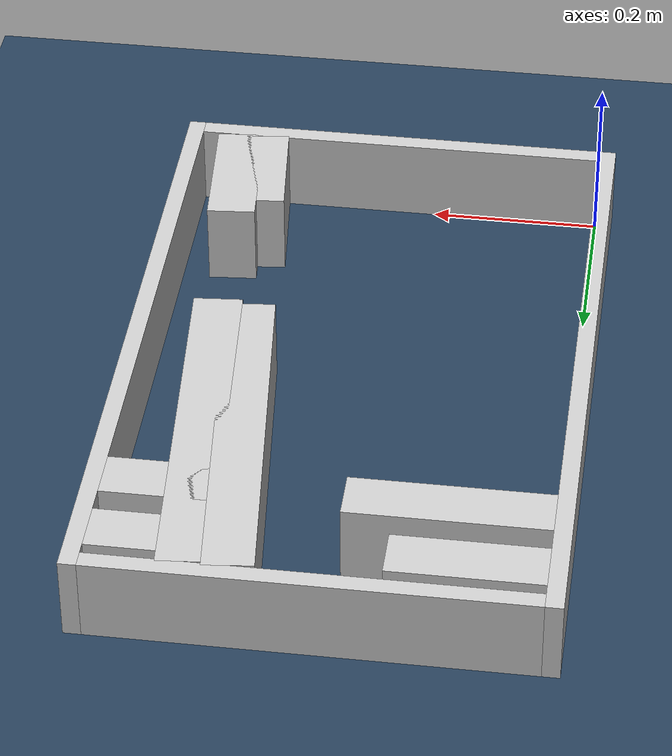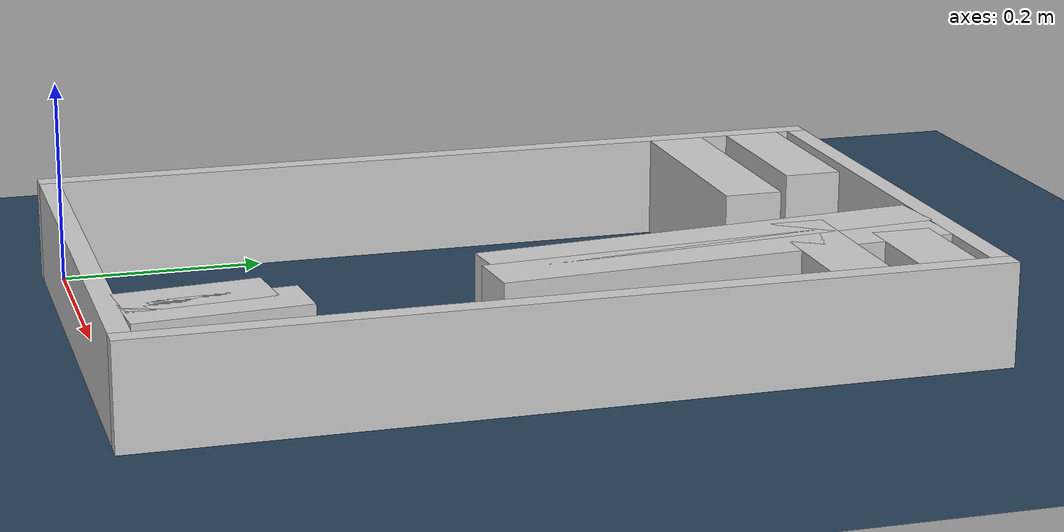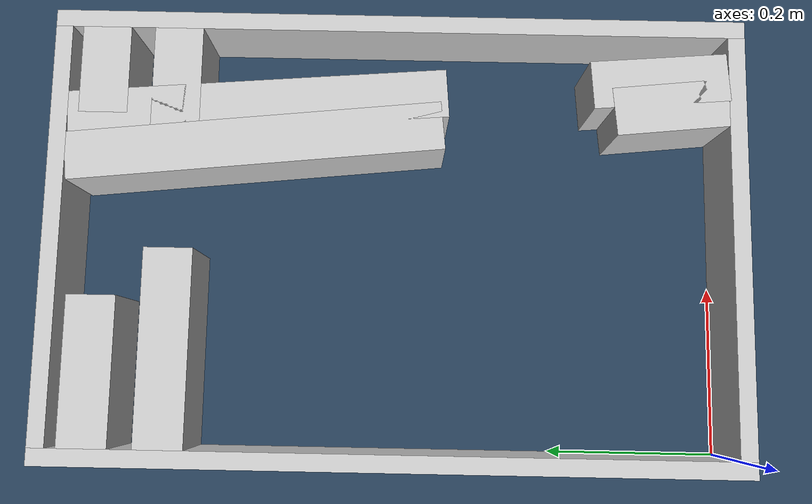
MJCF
<?xml version="1.0" ?>
<mujoco model="generated_real_template">
  <compiler angle="degree"/>
  <option timestep="0.002" integrator="implicitfast" iterations="100" cone="elliptic"/>
  <default>
    <geom density="1"/>
  </default>
  <asset>
    <texture builtin="gradient" height="3072" rgb1="0.3 0.5 0.7" rgb2="0 0 0" type="skybox" width="512"/>
    <texture builtin="checker" height="300" mark="edge" markrgb="0.8 0.8 0.8" name="groundplane" rgb1="0.2 0.3 0.4" rgb2="0.1 0.2 0.3" type="2d" width="300"/>
    <material name="groundplane" reflectance="0.2" texrepeat="5 5" texture="groundplane" texuniform="true"/>
  </asset>
  <worldbody>
    <light dir="0 0 -1" directional="true" pos="0 0 1.5"/>
    <geom name="floor" type="plane" condim="4" friction="0.5 0.005 0.001" material="groundplane" size="0 0 0.05"/>
    <body name="walls">
      <geom name="wall_boundary_left" type="box" condim="4" friction="1.0 0.005 0.0001" rgba="0.8 0.8 0.8 1" pos="-0.010000 0.387500 0.050000" euler="0 0 0.000000" size="0.010000 0.407500 0.050000"/>
      <geom name="wall_boundary_right" type="box" condim="4" friction="1.0 0.005 0.0001" rgba="0.8 0.8 0.8 1" pos="0.500000 0.387500 0.050000" euler="0 0 0.000000" size="0.010000 0.407500 0.050000"/>
      <geom name="wall_boundary_bottom" type="box" condim="4" friction="1.0 0.005 0.0001" rgba="0.8 0.8 0.8 1" pos="0.245000 -0.010000 0.050000" euler="0 0 0.000000" size="0.245000 0.010000 0.050000"/>
      <geom name="wall_boundary_top" type="box" condim="4" friction="1.0 0.005 0.0001" rgba="0.8 0.8 0.8 1" pos="0.245000 0.785000 0.050000" euler="0 0 0.000000" size="0.245000 0.010000 0.050000"/>
      <geom name="wall_inner_1_1" type="box" condim="4" friction="1.0 0.005 0.0001" rgba="0.8 0.8 0.8 1" pos="0.435935 0.080228 0.050000" euler="0 0 94.432153" size="0.080468 0.028500 0.050000"/>
      <geom name="wall_inner_1_2" type="box" condim="4" friction="1.0 0.005 0.0001" rgba="0.8 0.8 0.8 1" pos="0.399315 0.552679 0.050000" euler="0 0 94.432153" size="0.222988 0.028500 0.050000"/>
      <geom name="wall_inner_2_1" type="box" condim="4" friction="1.0 0.005 0.0001" rgba="0.8 0.8 0.8 1" pos="0.404921 0.067180 0.050000" euler="0 0 95.783638" size="0.067524 0.028500 0.050000"/>
      <geom name="wall_inner_2_2" type="box" condim="4" friction="1.0 0.005 0.0001" rgba="0.8 0.8 0.8 1" pos="0.355502 0.555091 0.050000" euler="0 0 95.783638" size="0.221034 0.028500 0.050000"/>
      <geom name="wall_inner_3_1" type="box" condim="4" friction="1.0 0.005 0.0001" rgba="0.8 0.8 0.8 1" pos="0.086052 0.733837 0.050000" euler="0 0 0.000000" size="0.086052 0.028500 0.050000"/>
      <geom name="wall_inner_3_2" type="box" condim="4" friction="1.0 0.005 0.0001" rgba="0.8 0.8 0.8 1" pos="0.438088 0.733837 0.050000" euler="0 0 0.000000" size="0.051912 0.028500 0.050000"/>
      <geom name="wall_inner_4_1" type="box" condim="4" friction="1.0 0.005 0.0001" rgba="0.8 0.8 0.8 1" pos="0.113935 0.648776 0.050000" euler="0 0 0.000000" size="0.113935 0.028500 0.050000"/>
      <geom name="wall_inner_4_2" type="box" condim="4" friction="1.0 0.005 0.0001" rgba="0.8 0.8 0.8 1" pos="0.411067 0.648776 0.050000" euler="0 0 0.000000" size="0.078933 0.028500 0.050000"/>
    </body>
  </worldbody>
</mujoco>
